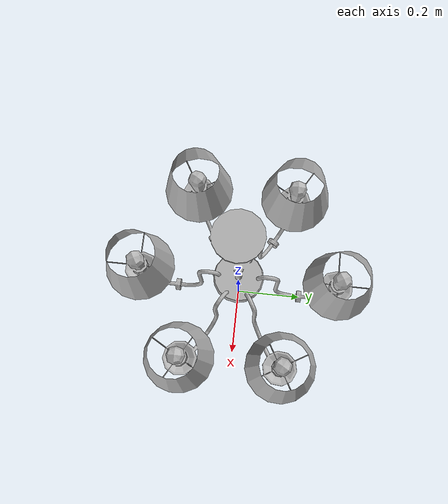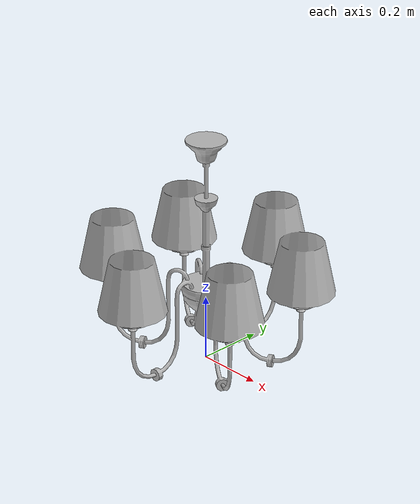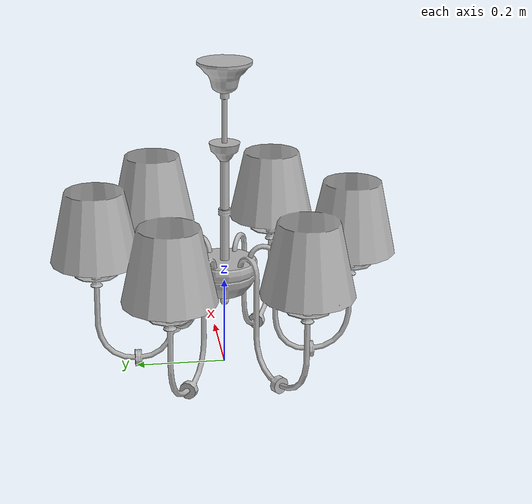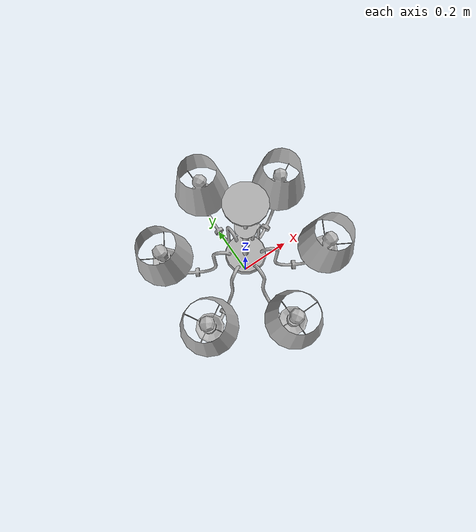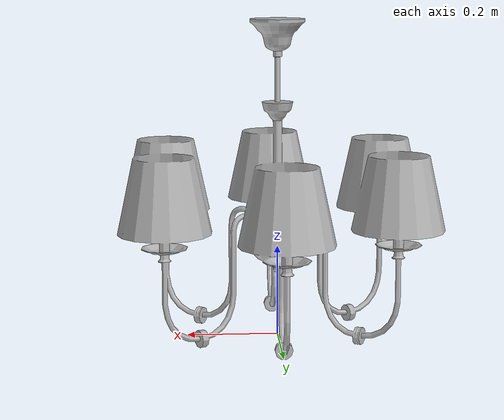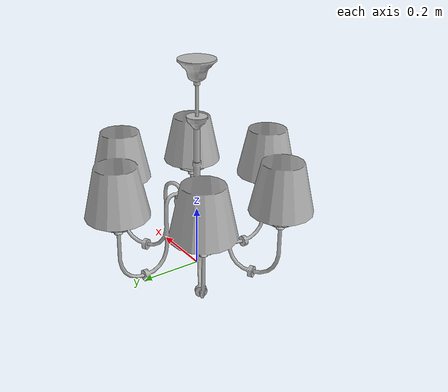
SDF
<?xml version='1.0'?>
<sdf version='1.4'>
  <model name='626'>
    <pose>0 0 0 0 0 0</pose>
    <static>true</static>
    <link name='link'>
      <collision name='collision'>
        <pose>0 0 0 0 0 0</pose>
        <geometry>
          <box>
            <size>0.69 0.769564 2</size>
          </box>
        </geometry>
      </collision>
      <visual name='visual'>
        <pose>0 0 0 0 0 0</pose>
        <geometry>
          <mesh><uri>model://626/626.dae</uri></mesh>
        </geometry>
      </visual>
    </link>
  </model>
</sdf>
